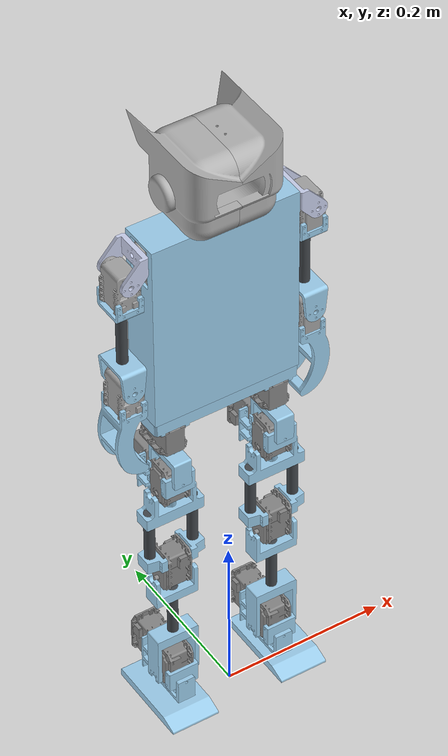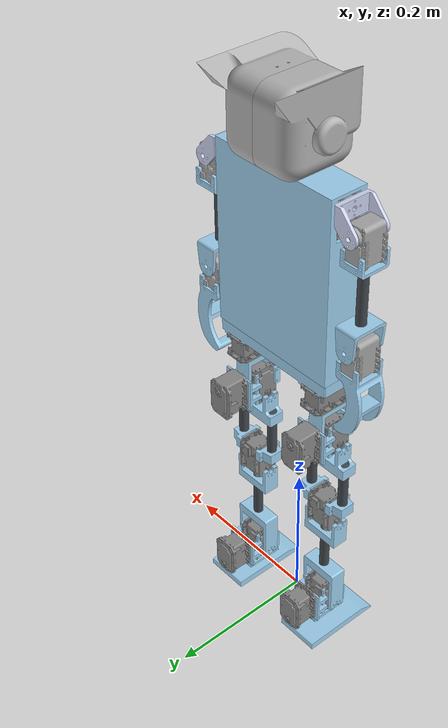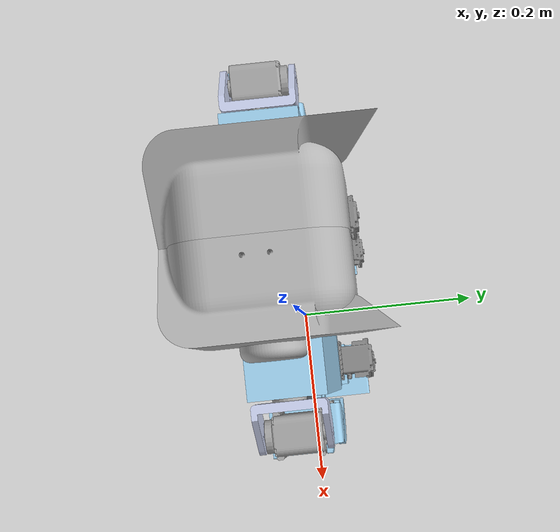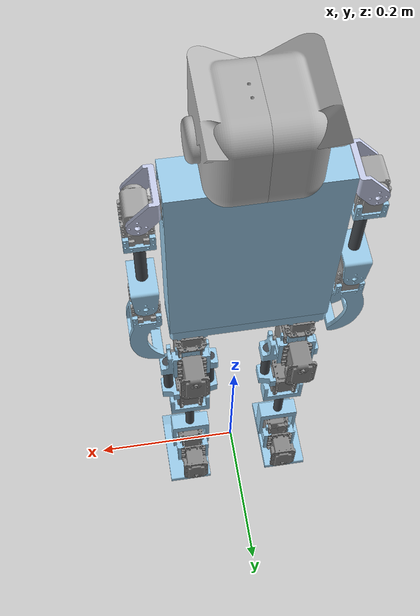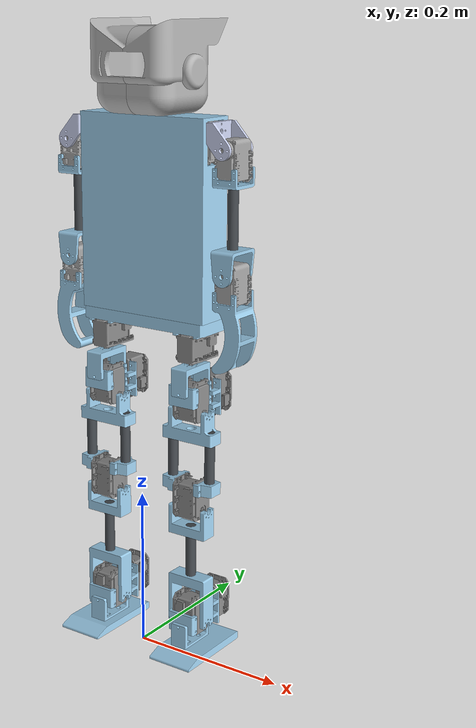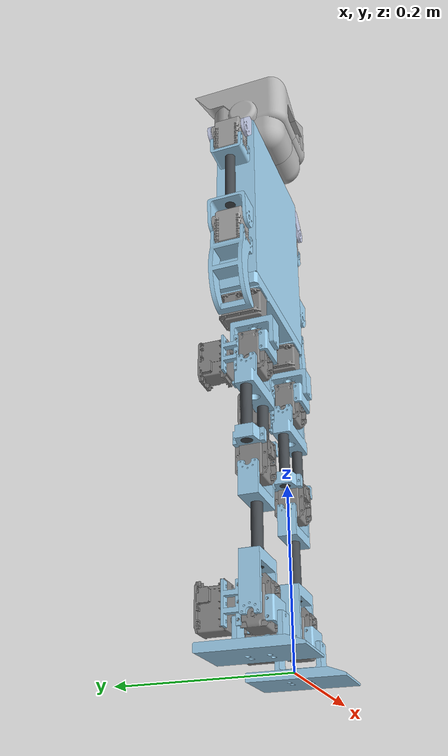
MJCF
<?xml version="1.0" ?>
<!-- Generated using onshape-to-robot -->
<!-- Onshape document_id: f494e174d964f52a4d6ec25c -->
<mujoco model="robot_env">
  <compiler angle="radian" meshdir="assets" autolimits="true"/>
  <default>
    <default class="robot_env">
      <joint frictionloss="0.1" armature="0.005"/>
      <position kp="50" dampratio="1"/>
      <default class="visual">
        <geom type="mesh" contype="0" conaffinity="0" group="2"/>
      </default>
      <default class="collision">
        <geom group="3"/>
      </default>
    </default>
  </default>
  <worldbody>
    <!-- Link body -->
    <body name="body" pos="0 0 .552" quat="1 0 0 0" childclass="robot_env">
      <freejoint name="body_freejoint"/>
      <inertial pos="5.07515e-11 0.024907 -0.0163937" mass="7.19122" fullinertia="0.0520022 0.0720446 0.0228789 3.38177e-10 4.47057e-11 -9.40186e-05"/>
      <!-- Part dc07_00a_dummy_none -->
      <geom type="mesh" class="visual" pos="0.065 0.0125 -0.15275" quat="1.04668e-15 1 1.13187e-25 3.23148e-17" mesh="dc07_00a_dummy_none" material="dc07_00a_dummy_none_material"/>
      <geom type="mesh" class="collision" pos="0.065 0.0125 -0.15275" quat="1.04668e-15 1 1.13187e-25 3.23148e-17" mesh="dc07_00a_dummy_none" material="dc07_00a_dummy_none_material"/>
      <!-- Part shoulder_extension_motor -->
      <geom type="mesh" class="visual" pos="0.071 0.025 0.065976" quat="1 1.23661e-16 -5.55112e-17 1.38778e-16" mesh="shoulder_extension_motor" material="shoulder_extension_motor_material"/>
      <geom type="mesh" class="collision" pos="0.071 0.025 0.065976" quat="1 1.23661e-16 -5.55112e-17 1.38778e-16" mesh="shoulder_extension_motor" material="shoulder_extension_motor_material"/>
      <!-- Part shoulder_extension_motor_2 -->
      <geom type="mesh" class="visual" pos="-0.071 0.025 0.065976" quat="1.55822e-15 6.11073e-17 -3.36536e-16 1" mesh="shoulder_extension_motor" material="shoulder_extension_motor_material"/>
      <geom type="mesh" class="collision" pos="-0.071 0.025 0.065976" quat="1.55822e-15 6.11073e-17 -3.36536e-16 1" mesh="shoulder_extension_motor" material="shoulder_extension_motor_material"/>
      <!-- Part part_1 -->
      <geom type="mesh" class="visual" pos="6.2797e-16 0.025 -0.135" quat="1 0 0 2.95823e-31" mesh="part_1" material="part_1_material"/>
      <geom type="mesh" class="collision" pos="6.2797e-16 0.025 -0.135" quat="1 0 0 2.95823e-31" mesh="part_1" material="part_1_material"/>
      <!-- Part body -->
      <geom type="mesh" class="visual" pos="-0.09 0.05 -0.12" quat="1 0 0 0" mesh="body" material="body_material"/>
      <geom type="mesh" class="collision" pos="-0.09 0.05 -0.12" quat="1 0 0 0" mesh="body" material="body_material"/>
      <!-- Part dc07_00a_dummy_none_2 -->
      <geom type="mesh" class="visual" pos="-0.065 0.0125 -0.15275" quat="1.04668e-15 1 1.15384e-25 3.92537e-17" mesh="dc07_00a_dummy_none" material="dc07_00a_dummy_none_material"/>
      <geom type="mesh" class="collision" pos="-0.065 0.0125 -0.15275" quat="1.04668e-15 1 1.15384e-25 3.92537e-17" mesh="dc07_00a_dummy_none" material="dc07_00a_dummy_none_material"/>
      <!-- Part part_2 -->
      <geom type="mesh" class="visual" pos="4.16334e-17 0.025 0.12" quat="1 -7.82437e-17 -0 5.30825e-16" mesh="part_2" material="part_2_material"/>
      <geom type="mesh" class="collision" pos="4.16334e-17 0.025 0.12" quat="1 -7.82437e-17 -0 5.30825e-16" mesh="part_2" material="part_2_material"/>
      <!-- Part part_1_2 -->
      <geom type="mesh" class="visual" pos="4.16334e-17 0.025 0.12" quat="1 -1.81927e-16 0 5.34295e-16" mesh="part_1__2" material="part_1__2_material"/>
      <geom type="mesh" class="collision" pos="4.16334e-17 0.025 0.12" quat="1 -1.81927e-16 0 5.34295e-16" mesh="part_1__2" material="part_1__2_material"/>
      <!-- Link shoulder_link -->
      <body name="shoulder_link" pos="0.092 0.025 0.104476" quat="0.707107 4.25547e-16 -0.707107 3.33067e-16">
        <!-- Joint from body to shoulder_link -->
        <joint axis="0 0 1" name=" Shoulder front and back right" type="hinge" range="-1.5707963267948966 1.5707963267948966"/>
        <inertial pos="-0.00571829 -1.033e-08 -0.00978897" mass="0.0312537" fullinertia="1.30191e-05 5.64649e-06 1.38435e-05 -5.24922e-12 -1.80302e-06 -5.43041e-12"/>
        <!-- Part shoulder_link -->
        <geom type="mesh" class="visual" pos="-0.011 -0.024127 1.38778e-17" quat="0.5 0.5 0.5 -0.5" mesh="shoulder_link" material="shoulder_link_material"/>
        <geom type="mesh" class="collision" pos="-0.011 -0.024127 1.38778e-17" quat="0.5 0.5 0.5 -0.5" mesh="shoulder_link" material="shoulder_link_material"/>
        <!-- Link shoulder_extension_motor -->
        <body name="shoulder_extension_motor" pos="-0.019 0.020127 -0.022" quat="0.5 -0.5 0.5 0.5">
          <!-- Joint from shoulder_link to shoulder_extension_motor -->
          <joint axis="0 0 1" name="Shoulder right lateral" type="hinge" range="-3.1415926535897922 8.881784197001252e-16"/>
          <inertial pos="-4.37745e-09 0.0335095 -0.0190665" mass="0.47136" fullinertia="0.000788471 7.59222e-05 0.000760928 -1.12984e-10 -1.83295e-11 -1.00061e-05"/>
          <!-- Part arm_to_hand_link -->
          <geom type="mesh" class="visual" pos="-1.38778e-17 0.145 -0.04185" quat="0.707107 0.707107 4.44089e-16 -9.58802e-16" mesh="arm_to_hand_link" material="arm_to_hand_link_material"/>
          <geom type="mesh" class="collision" pos="-1.38778e-17 0.145 -0.04185" quat="0.707107 0.707107 4.44089e-16 -9.58802e-16" mesh="arm_to_hand_link" material="arm_to_hand_link_material"/>
          <!-- Part shoulder_to_arm_link -->
          <geom type="mesh" class="visual" pos="2.77556e-17 0.0325 0.0018" quat="0.5 0.5 0.5 -0.5" mesh="shoulder_to_arm_link" material="shoulder_to_arm_link_material"/>
          <geom type="mesh" class="collision" pos="2.77556e-17 0.0325 0.0018" quat="0.5 0.5 0.5 -0.5" mesh="shoulder_to_arm_link" material="shoulder_to_arm_link_material"/>
          <!-- Part shoulder_extension_motor_3 -->
          <geom type="mesh" class="visual" pos="0 0.0385 -0.0182" quat="0.5 0.5 0.5 -0.5" mesh="shoulder_extension_motor" material="shoulder_extension_motor_material"/>
          <geom type="mesh" class="collision" pos="0 0.0385 -0.0182" quat="0.5 0.5 0.5 -0.5" mesh="shoulder_extension_motor" material="shoulder_extension_motor_material"/>
          <!-- Part peg -->
          <geom type="mesh" class="visual" pos="1.38778e-17 0.12 -0.0182" quat="0.707107 0.707107 6.66134e-16 -6.75059e-16" mesh="peg" material="peg_material"/>
          <geom type="mesh" class="collision" pos="1.38778e-17 0.12 -0.0182" quat="0.707107 0.707107 6.66134e-16 -6.75059e-16" mesh="peg" material="peg_material"/>
          <!-- Link shoulder_extension_motor_2 -->
          <body name="shoulder_extension_motor_2" pos="8.32667e-17 0.145 0.00145" quat="1 -0 5.55112e-16 -2.22045e-16">
            <!-- Joint from shoulder_extension_motor to shoulder_extension_motor_2 -->
            <joint axis="0 0 1" name="right wrist" type="hinge" range="-1.5707963267948957 0.5235987755982997"/>
            <inertial pos="-6.11201e-09 0.012611 -0.0194098" mass="0.33759" fullinertia="9.80176e-05 5.43169e-05 8.19654e-05 -6.98624e-11 -1.84776e-11 -1.47092e-06"/>
            <!-- Part shoulder_extension_motor_4 -->
            <geom type="mesh" class="visual" pos="-1.38778e-17 0.0385 -0.0182" quat="0.5 0.5 0.5 -0.5" mesh="shoulder_extension_motor" material="shoulder_extension_motor_material"/>
            <geom type="mesh" class="collision" pos="-1.38778e-17 0.0385 -0.0182" quat="0.5 0.5 0.5 -0.5" mesh="shoulder_extension_motor" material="shoulder_extension_motor_material"/>
            <!-- Part arm_link -->
            <geom type="mesh" class="visual" pos="-5.05103e-05 0.0325 -0.0382" quat="0.5 0.5 -0.5 0.5" mesh="arm_link" material="arm_link_material"/>
            <geom type="mesh" class="collision" pos="-5.05103e-05 0.0325 -0.0382" quat="0.5 0.5 -0.5 0.5" mesh="arm_link" material="arm_link_material"/>
          </body>
        </body>
      </body>
      <!-- Link shoulder_link_2 -->
      <body name="shoulder_link_2" pos="-0.092 0.025 0.104476" quat="7.00132e-16 -0.707107 -1.11022e-16 -0.707107">
        <!-- Joint from body to shoulder_link_2 -->
        <joint axis="0 0 1" name="Shoulder left front back" type="hinge" range="-1.570796326794893 1.5707963267949"/>
        <inertial pos="-0.00571829 -1.033e-08 -0.00978897" mass="0.0312537" fullinertia="1.30191e-05 5.64649e-06 1.38435e-05 -5.24922e-12 -1.80302e-06 -5.43041e-12"/>
        <!-- Part shoulder_link_2 -->
        <geom type="mesh" class="visual" pos="-0.011 -0.024127 0" quat="0.5 0.5 0.5 -0.5" mesh="shoulder_link" material="shoulder_link_material"/>
        <geom type="mesh" class="collision" pos="-0.011 -0.024127 0" quat="0.5 0.5 0.5 -0.5" mesh="shoulder_link" material="shoulder_link_material"/>
        <!-- Link shoulder_extension_motor_3 -->
        <body name="shoulder_extension_motor_3" pos="-0.019 0.020127 -0.022" quat="0.5 -0.5 0.5 0.5">
          <!-- Joint from shoulder_link_2 to shoulder_extension_motor_3 -->
          <joint axis="0 0 1" name="shoulder left lateral" type="hinge" range="-3.1415926535897922 8.881784197001252e-16"/>
          <inertial pos="-4.37745e-09 0.0335095 -0.0190665" mass="0.47136" fullinertia="0.000788471 7.59222e-05 0.000760928 -1.12984e-10 -1.83295e-11 -1.00061e-05"/>
          <!-- Part arm_to_hand_link_2 -->
          <geom type="mesh" class="visual" pos="1.66533e-16 0.145 -0.04185" quat="0.707107 0.707107 0 8.46076e-17" mesh="arm_to_hand_link" material="arm_to_hand_link_material"/>
          <geom type="mesh" class="collision" pos="1.66533e-16 0.145 -0.04185" quat="0.707107 0.707107 0 8.46076e-17" mesh="arm_to_hand_link" material="arm_to_hand_link_material"/>
          <!-- Part peg_2 -->
          <geom type="mesh" class="visual" pos="1.38778e-16 0.12 -0.0182" quat="0.707107 0.707107 2.22045e-16 1.83844e-16" mesh="peg" material="peg_material"/>
          <geom type="mesh" class="collision" pos="1.38778e-16 0.12 -0.0182" quat="0.707107 0.707107 2.22045e-16 1.83844e-16" mesh="peg" material="peg_material"/>
          <!-- Part shoulder_to_arm_link_2 -->
          <geom type="mesh" class="visual" pos="-2.77556e-17 0.0325 0.0018" quat="0.5 0.5 0.5 -0.5" mesh="shoulder_to_arm_link" material="shoulder_to_arm_link_material"/>
          <geom type="mesh" class="collision" pos="-2.77556e-17 0.0325 0.0018" quat="0.5 0.5 0.5 -0.5" mesh="shoulder_to_arm_link" material="shoulder_to_arm_link_material"/>
          <!-- Part shoulder_extension_motor_5 -->
          <geom type="mesh" class="visual" pos="-1.38778e-17 0.0385 -0.0182" quat="0.5 0.5 0.5 -0.5" mesh="shoulder_extension_motor" material="shoulder_extension_motor_material"/>
          <geom type="mesh" class="collision" pos="-1.38778e-17 0.0385 -0.0182" quat="0.5 0.5 0.5 -0.5" mesh="shoulder_extension_motor" material="shoulder_extension_motor_material"/>
          <!-- Link shoulder_extension_motor_4 -->
          <body name="shoulder_extension_motor_4" pos="9.71445e-17 0.145 0.00145" quat="1 3.01695e-16 -8.32667e-17 1.12757e-16">
            <!-- Joint from shoulder_extension_motor_3 to shoulder_extension_motor_4 -->
            <joint axis="0 0 1" name="left hand" type="hinge" range="-1.5707963267948966 0.5235987755982988"/>
            <inertial pos="-6.11201e-09 0.012611 -0.0194098" mass="0.33759" fullinertia="9.80176e-05 5.43169e-05 8.19654e-05 -6.98624e-11 -1.84776e-11 -1.47092e-06"/>
            <!-- Part arm_link_2 -->
            <geom type="mesh" class="visual" pos="-5.05103e-05 0.0325 -0.0382" quat="0.5 0.5 -0.5 0.5" mesh="arm_link" material="arm_link_material"/>
            <geom type="mesh" class="collision" pos="-5.05103e-05 0.0325 -0.0382" quat="0.5 0.5 -0.5 0.5" mesh="arm_link" material="arm_link_material"/>
            <!-- Part shoulder_extension_motor_6 -->
            <geom type="mesh" class="visual" pos="0 0.0385 -0.0182" quat="0.5 0.5 0.5 -0.5" mesh="shoulder_extension_motor" material="shoulder_extension_motor_material"/>
            <geom type="mesh" class="collision" pos="0 0.0385 -0.0182" quat="0.5 0.5 0.5 -0.5" mesh="shoulder_extension_motor" material="shoulder_extension_motor_material"/>
          </body>
        </body>
      </body>
      <!-- Link part_1 -->
      <body name="part_1" pos="0.065 0.0125 -0.1745" quat="3.25616e-17 -3.221e-17 1.11022e-15 1">
        <!-- Joint from body to part_1 -->
        <joint axis="0 0 1" name="right leg twist" type="hinge" range="-0.5235987755982988 0.5235987755982988"/>
        <inertial pos="0 0 0" mass="1e-09" fullinertia="1e-09 1e-09 1e-09 0 0 0"/>
        <!-- Part part_1_3 -->
        <geom type="mesh" class="visual" pos="-8.85663e-05 -0.0255 -0.03195" quat="0 1 0 0" mesh="part_1__3" material="part_1__3_material"/>
        <geom type="mesh" class="collision" pos="-8.85663e-05 -0.0255 -0.03195" quat="0 1 0 0" mesh="part_1__3" material="part_1__3_material"/>
        <!-- Link part_1_2 -->
        <body name="part_1_2" pos="-8.85663e-05 0.0205 -0.03195" quat="0.707107 -0.707107 0 6.1669e-33">
          <!-- Joint from part_1 to part_1_2 -->
          <joint axis="0 0 1" name="right leg lateral" type="hinge" range="-1.047197551196594 1.0471975511966012"/>
          <inertial pos="-3.38415e-05 0.0123477 -0.0441492" mass="0.707082" fullinertia="0.000559482 0.000502965 0.000187975 1.42758e-06 -2.65164e-07 -9.43743e-06"/>
          <!-- Part part_1_4 -->
          <geom type="mesh" class="visual" pos="-5.39421e-10 -0.0085 -0.00675" quat="0.707107 -0.707107 -2.17342e-09 -2.17342e-09" mesh="part_1__4" material="part_1__4_material"/>
          <geom type="mesh" class="collision" pos="-5.39421e-10 -0.0085 -0.00675" quat="0.707107 -0.707107 -2.17342e-09 -2.17342e-09" mesh="part_1__4" material="part_1__4_material"/>
          <!-- Part dc07_00a_dummy_none_3 -->
          <geom type="mesh" class="visual" pos="-5.00004e-05 0.025 -0.022" quat="0.707107 -2.59329e-17 -0.707107 2.22045e-16" mesh="dc07_00a_dummy_none" material="dc07_00a_dummy_none_material"/>
          <geom type="mesh" class="collision" pos="-5.00004e-05 0.025 -0.022" quat="0.707107 -2.59329e-17 -0.707107 2.22045e-16" mesh="dc07_00a_dummy_none" material="dc07_00a_dummy_none_material"/>
          <!-- Part part_1_5 -->
          <geom type="mesh" class="visual" pos="-0.01505 0.0125 -0.037" quat="0.5 0.5 0.5 -0.5" mesh="part_1__5" material="part_1__5_material"/>
          <geom type="mesh" class="collision" pos="-0.01505 0.0125 -0.037" quat="0.5 0.5 0.5 -0.5" mesh="part_1__5" material="part_1__5_material"/>
          <!-- Part part_1_6 -->
          <geom type="mesh" class="visual" pos="0.01495 0.0125 -0.037" quat="0.5 -0.5 0.5 0.5" mesh="part_1__5" material="part_1__5_material"/>
          <geom type="mesh" class="collision" pos="0.01495 0.0125 -0.037" quat="0.5 -0.5 0.5 0.5" mesh="part_1__5" material="part_1__5_material"/>
          <!-- Part dc07_00a_dummy_none_4 -->
          <geom type="mesh" class="visual" pos="-5.00001e-05 4.71845e-16 -0.06775" quat="1.23915e-16 3.50267e-09 3.33067e-16 -1" mesh="dc07_00a_dummy_none" material="dc07_00a_dummy_none_material"/>
          <geom type="mesh" class="collision" pos="-5.00001e-05 4.71845e-16 -0.06775" quat="1.23915e-16 3.50267e-09 3.33067e-16 -1" mesh="dc07_00a_dummy_none" material="dc07_00a_dummy_none_material"/>
          <!-- Link dc07_00a_dummy_none -->
          <body name="dc07_00a_dummy_none" pos="-0.0178 0.025 -0.022" quat="2.46005e-17 0.707107 1.11022e-16 0.707107">
            <!-- Joint from part_1_2 to dc07_00a_dummy_none -->
            <joint axis="0 0 1" name="right hammy" type="hinge" range="-3.907985046680551e-14 1.5707963267948575"/>
            <inertial pos="8.87415e-05 -0.0909428 0.017692" mass="0.597955" fullinertia="0.000946989 0.000241356 0.00076487 -9.4812e-09 -4.40927e-12 1.1703e-06"/>
            <!-- Part part_1_7 -->
            <geom type="mesh" class="visual" pos="8.85663e-05 -6.66134e-16 0.04442" quat="1.00475e-14 1.43579e-14 0.707107 0.707107" mesh="part_1__6" material="part_1__6_material"/>
            <geom type="mesh" class="collision" pos="8.85663e-05 -6.66134e-16 0.04442" quat="1.00475e-14 1.43579e-14 0.707107 0.707107" mesh="part_1__6" material="part_1__6_material"/>
            <!-- Part peg_3 -->
            <geom type="mesh" class="visual" pos="8.85663e-05 -0.10395 -0.009665" quat="1.0103e-14 1.51239e-14 0.707107 0.707107" mesh="peg" material="peg_material"/>
            <geom type="mesh" class="collision" pos="8.85663e-05 -0.10395 -0.009665" quat="1.0103e-14 1.51239e-14 0.707107 0.707107" mesh="peg" material="peg_material"/>
            <!-- Part peg_4 -->
            <geom type="mesh" class="visual" pos="8.85663e-05 -0.10395 0.045085" quat="9.60343e-15 1.4689e-14 0.707107 0.707107" mesh="peg" material="peg_material"/>
            <geom type="mesh" class="collision" pos="8.85663e-05 -0.10395 0.045085" quat="9.60343e-15 1.4689e-14 0.707107 0.707107" mesh="peg" material="peg_material"/>
            <!-- Part part_1_8 -->
            <geom type="mesh" class="visual" pos="8.85663e-05 -0.08895 0.045085" quat="0.5 -0.5 -0.5 -0.5" mesh="part_1__7" material="part_1__7_material"/>
            <geom type="mesh" class="collision" pos="8.85663e-05 -0.08895 0.045085" quat="0.5 -0.5 -0.5 -0.5" mesh="part_1__7" material="part_1__7_material"/>
            <!-- Part dc07_00a_dummy_none_5 -->
            <geom type="mesh" class="visual" pos="8.85663e-05 -0.12695 0.01771" quat="1.78468e-14 3.68255e-15 5.55112e-16 1" mesh="dc07_00a_dummy_none" material="dc07_00a_dummy_none_material"/>
            <geom type="mesh" class="collision" pos="8.85663e-05 -0.12695 0.01771" quat="1.78468e-14 3.68255e-15 5.55112e-16 1" mesh="dc07_00a_dummy_none" material="dc07_00a_dummy_none_material"/>
            <!-- Part part_1_9 -->
            <geom type="mesh" class="visual" pos="8.85663e-05 -0.08895 -0.009665" quat="0.5 -0.5 0.5 0.5" mesh="part_1__7" material="part_1__7_material"/>
            <geom type="mesh" class="collision" pos="8.85663e-05 -0.08895 -0.009665" quat="0.5 -0.5 0.5 0.5" mesh="part_1__7" material="part_1__7_material"/>
            <!-- Link part_1_3 -->
            <body name="part_1_3" pos="8.85663e-05 -0.12695 0.03546" quat="3.67935e-15 -1.78413e-14 -1 5.82867e-16">
              <!-- Joint from dc07_00a_dummy_none to part_1_3 -->
              <joint axis="0 0 1" name="right knee" type="hinge" range="-1.570796326794932 1.570796326794861"/>
              <inertial pos="-8.85412e-05 -0.0702967 0.01771" mass="0.195615" fullinertia="0.000327822 5.05789e-05 0.000288749 1.56531e-08 2.25082e-19 2.46587e-19"/>
              <!-- Part peg_5 -->
              <geom type="mesh" class="visual" pos="-8.85663e-05 -0.10395 0.01771" quat="0.707107 -0.707107 1.22125e-14 -1.29728e-14" mesh="peg" material="peg_material"/>
              <geom type="mesh" class="collision" pos="-8.85663e-05 -0.10395 0.01771" quat="0.707107 -0.707107 1.22125e-14 -1.29728e-14" mesh="peg" material="peg_material"/>
              <!-- Part part_1_10 -->
              <geom type="mesh" class="visual" pos="-8.85663e-05 0 -0.009" quat="0.707107 -0.707107 1.22125e-14 -1.3017e-14" mesh="part_1__8" material="part_1__8_material"/>
              <geom type="mesh" class="collision" pos="-8.85663e-05 0 -0.009" quat="0.707107 -0.707107 1.22125e-14 -1.3017e-14" mesh="part_1__8" material="part_1__8_material"/>
              <!-- Part part_1_11 -->
              <geom type="mesh" class="visual" pos="-8.85663e-05 -0.15385 -0.009" quat="1.20112e-14 -1.31232e-14 -0.707107 0.707107" mesh="part_1__9" material="part_1__9_material"/>
              <geom type="mesh" class="collision" pos="-8.85663e-05 -0.15385 -0.009" quat="1.20112e-14 -1.31232e-14 -0.707107 0.707107" mesh="part_1__9" material="part_1__9_material"/>
              <!-- Link part_1_4 -->
              <body name="part_1_4" pos="-0.000177133 -0.15385 0.03942" quat="1.77636e-14 -7.84833e-16 5.55112e-16 1">
                <!-- Joint from part_1_3 to part_1_4 -->
                <joint axis="0 0 1" name="right foot" type="hinge" range="-1.570796326794853 0.5235987755983423"/>
                <inertial pos="-0.0221492 -0.0114021 -0.0217662" mass="0.707082" fullinertia="0.000187139 0.000502965 0.000558646 -5.372e-06 2.65156e-07 -1.4311e-06"/>
                <!-- Part part_1_12 -->
                <geom type="mesh" class="visual" pos="-0.015 -0.0125 -0.03675" quat="1.52473e-14 1.51403e-14 0.707107 0.707107" mesh="part_1__5" material="part_1__5_material"/>
                <geom type="mesh" class="collision" pos="-0.015 -0.0125 -0.03675" quat="1.52473e-14 1.51403e-14 0.707107 0.707107" mesh="part_1__5" material="part_1__5_material"/>
                <!-- Part dc07_00a_dummy_none_6 -->
                <geom type="mesh" class="visual" pos="-0.04575 1.77636e-15 -0.02175" quat="0.707107 -1.02913e-14 0.707107 -4.0485e-14" mesh="dc07_00a_dummy_none" material="dc07_00a_dummy_none_material"/>
                <geom type="mesh" class="collision" pos="-0.04575 1.77636e-15 -0.02175" quat="0.707107 -1.02913e-14 0.707107 -4.0485e-14" mesh="dc07_00a_dummy_none" material="dc07_00a_dummy_none_material"/>
                <!-- Part dc07_00a_dummy_none_7 -->
                <geom type="mesh" class="visual" pos="6.11663e-15 -3.33067e-16 -0.02175" quat="1 -3.57897e-14 3.33067e-16 -2.16119e-14" mesh="dc07_00a_dummy_none" material="dc07_00a_dummy_none_material"/>
                <geom type="mesh" class="collision" pos="6.11663e-15 -3.33067e-16 -0.02175" quat="1 -3.57897e-14 3.33067e-16 -2.16119e-14" mesh="dc07_00a_dummy_none" material="dc07_00a_dummy_none_material"/>
                <!-- Part part_1_13 -->
                <geom type="mesh" class="visual" pos="0.01525 0.0085 -0.0218" quat="0.5 0.5 -0.5 0.5" mesh="part_1__4" material="part_1__4_material"/>
                <geom type="mesh" class="collision" pos="0.01525 0.0085 -0.0218" quat="0.5 0.5 -0.5 0.5" mesh="part_1__4" material="part_1__4_material"/>
                <!-- Part part_1_14 -->
                <geom type="mesh" class="visual" pos="-0.015 -0.0125 -0.00675" quat="1.5299e-14 -1.53038e-14 -0.707107 0.707107" mesh="part_1__5" material="part_1__5_material"/>
                <geom type="mesh" class="collision" pos="-0.015 -0.0125 -0.00675" quat="1.5299e-14 -1.53038e-14 -0.707107 0.707107" mesh="part_1__5" material="part_1__5_material"/>
                <!-- Link part_1_5 -->
                <body name="part_1_5" pos="0.022 1.86517e-14 -0.0218" quat="0.707107 -1.19644e-14 -0.707107 -1.1352e-14">
                  <!-- Joint from part_1_4 to part_1_5 -->
                  <joint axis="0 0 1" name="right foot twist" type="hinge" range="-0.523598775598226 0.5235987755983716"/>
                  <inertial pos="-1.32219e-06 0.0214439 0.0199037" mass="0.0378211" fullinertia="1.63936e-05 1.44949e-05 5.01369e-06 -1.03364e-09 1.17998e-09 -4.80658e-07"/>
                  <!-- Part part_1_15 -->
                  <geom type="mesh" class="visual" pos="0.007 0.03695 0.0205" quat="0.707107 0.707107 2.77556e-15 -3.20888e-15" mesh="part_1__10" material="part_1__10_material"/>
                  <geom type="mesh" class="collision" pos="0.007 0.03695 0.0205" quat="0.707107 0.707107 2.77556e-15 -3.20888e-15" mesh="part_1__10" material="part_1__10_material"/>
                  <!-- Part part_1_16 -->
                  <geom type="mesh" class="visual" pos="0 0 0.046" quat="0.707107 0.707107 -0 -2.51823e-25" mesh="part_1__11" material="part_1__11_material"/>
                  <geom type="mesh" class="collision" pos="0 0 0.046" quat="0.707107 0.707107 -0 -2.51823e-25" mesh="part_1__11" material="part_1__11_material"/>
                </body>
              </body>
            </body>
          </body>
        </body>
      </body>
      <!-- Link part_1_6 -->
      <body name="part_1_6" pos="-0.065 0.0125 -0.1745" quat="8.07806e-17 8.62114e-16 -6.66134e-16 -1">
        <!-- Joint from body to part_1_6 -->
        <joint axis="0 0 1" name="left leg twist" type="hinge" range="-0.523598775598297 0.5235987755983006"/>
        <inertial pos="0 0 0" mass="1e-09" fullinertia="1e-09 1e-09 1e-09 0 0 0"/>
        <!-- Part part_1_17 -->
        <geom type="mesh" class="visual" pos="-8.85663e-05 -0.0255 -0.03195" quat="0 1 0 0" mesh="part_1__3" material="part_1__3_material"/>
        <geom type="mesh" class="collision" pos="-8.85663e-05 -0.0255 -0.03195" quat="0 1 0 0" mesh="part_1__3" material="part_1__3_material"/>
        <!-- Link part_1_7 -->
        <body name="part_1_7" pos="-8.85663e-05 0.0205 -0.03195" quat="0.707107 -0.707107 0 -4.79509e-34">
          <!-- Joint from part_1_6 to part_1_7 -->
          <joint axis="0 0 1" name="left leg lateral" type="hinge" range="-1.0471975511965959 1.0471975511965994"/>
          <inertial pos="-3.38415e-05 0.0123477 -0.0441492" mass="0.707082" fullinertia="0.000559482 0.000502965 0.000187975 1.42758e-06 -2.65164e-07 -9.43743e-06"/>
          <!-- Part part_1_18 -->
          <geom type="mesh" class="visual" pos="0.01495 0.0125 -0.037" quat="0.5 -0.5 0.5 0.5" mesh="part_1__5" material="part_1__5_material"/>
          <geom type="mesh" class="collision" pos="0.01495 0.0125 -0.037" quat="0.5 -0.5 0.5 0.5" mesh="part_1__5" material="part_1__5_material"/>
          <!-- Part dc07_00a_dummy_none_8 -->
          <geom type="mesh" class="visual" pos="-5.00001e-05 -5.55112e-17 -0.06775" quat="9.05687e-16 3.50267e-09 0 -1" mesh="dc07_00a_dummy_none" material="dc07_00a_dummy_none_material"/>
          <geom type="mesh" class="collision" pos="-5.00001e-05 -5.55112e-17 -0.06775" quat="9.05687e-16 3.50267e-09 0 -1" mesh="dc07_00a_dummy_none" material="dc07_00a_dummy_none_material"/>
          <!-- Part dc07_00a_dummy_none_9 -->
          <geom type="mesh" class="visual" pos="-5.00004e-05 0.025 -0.022" quat="0.707107 7.38434e-16 -0.707107 5.56892e-16" mesh="dc07_00a_dummy_none" material="dc07_00a_dummy_none_material"/>
          <geom type="mesh" class="collision" pos="-5.00004e-05 0.025 -0.022" quat="0.707107 7.38434e-16 -0.707107 5.56892e-16" mesh="dc07_00a_dummy_none" material="dc07_00a_dummy_none_material"/>
          <!-- Part part_1_19 -->
          <geom type="mesh" class="visual" pos="-0.01505 0.0125 -0.037" quat="0.5 0.5 0.5 -0.5" mesh="part_1__5" material="part_1__5_material"/>
          <geom type="mesh" class="collision" pos="-0.01505 0.0125 -0.037" quat="0.5 0.5 0.5 -0.5" mesh="part_1__5" material="part_1__5_material"/>
          <!-- Part part_1_20 -->
          <geom type="mesh" class="visual" pos="-5.39421e-10 -0.0085 -0.00675" quat="0.707107 -0.707107 -2.17342e-09 -2.17342e-09" mesh="part_1__4" material="part_1__4_material"/>
          <geom type="mesh" class="collision" pos="-5.39421e-10 -0.0085 -0.00675" quat="0.707107 -0.707107 -2.17342e-09 -2.17342e-09" mesh="part_1__4" material="part_1__4_material"/>
          <!-- Link dc07_00a_dummy_none_2 -->
          <body name="dc07_00a_dummy_none_2" pos="-0.0178 0.025 -0.022" quat="7.38434e-16 -0.707107 -6.66134e-16 -0.707107">
            <!-- Joint from part_1_7 to dc07_00a_dummy_none_2 -->
            <joint axis="0 0 1" name="left hammy" type="hinge" range="-8.881784197001252e-16 1.5707963267948957"/>
            <inertial pos="8.87415e-05 -0.0909428 0.017692" mass="0.597955" fullinertia="0.000946989 0.000241356 0.00076487 -9.4812e-09 -4.40926e-12 1.1703e-06"/>
            <!-- Part part_1_21 -->
            <geom type="mesh" class="visual" pos="8.85663e-05 2.77556e-17 0.04442" quat="3.33067e-16 -4.70426e-17 -0.707107 -0.707107" mesh="part_1__6" material="part_1__6_material"/>
            <geom type="mesh" class="collision" pos="8.85663e-05 2.77556e-17 0.04442" quat="3.33067e-16 -4.70426e-17 -0.707107 -0.707107" mesh="part_1__6" material="part_1__6_material"/>
            <!-- Part part_1_22 -->
            <geom type="mesh" class="visual" pos="8.85663e-05 -0.08895 0.045085" quat="0.5 -0.5 -0.5 -0.5" mesh="part_1__7" material="part_1__7_material"/>
            <geom type="mesh" class="collision" pos="8.85663e-05 -0.08895 0.045085" quat="0.5 -0.5 -0.5 -0.5" mesh="part_1__7" material="part_1__7_material"/>
            <!-- Part peg_6 -->
            <geom type="mesh" class="visual" pos="8.85663e-05 -0.10395 0.045085" quat="2.22045e-16 -1.39694e-16 -0.707107 -0.707107" mesh="peg" material="peg_material"/>
            <geom type="mesh" class="collision" pos="8.85663e-05 -0.10395 0.045085" quat="2.22045e-16 -1.39694e-16 -0.707107 -0.707107" mesh="peg" material="peg_material"/>
            <!-- Part dc07_00a_dummy_none_10 -->
            <geom type="mesh" class="visual" pos="8.85663e-05 -0.12695 0.01771" quat="0 2.4694e-16 0 1" mesh="dc07_00a_dummy_none" material="dc07_00a_dummy_none_material"/>
            <geom type="mesh" class="collision" pos="8.85663e-05 -0.12695 0.01771" quat="0 2.4694e-16 0 1" mesh="dc07_00a_dummy_none" material="dc07_00a_dummy_none_material"/>
            <!-- Part peg_7 -->
            <geom type="mesh" class="visual" pos="8.85663e-05 -0.10395 -0.009665" quat="2.10942e-15 -4.9323e-15 0.707107 0.707107" mesh="peg" material="peg_material"/>
            <geom type="mesh" class="collision" pos="8.85663e-05 -0.10395 -0.009665" quat="2.10942e-15 -4.9323e-15 0.707107 0.707107" mesh="peg" material="peg_material"/>
            <!-- Part part_1_23 -->
            <geom type="mesh" class="visual" pos="8.85663e-05 -0.08895 -0.009665" quat="0.5 -0.5 0.5 0.5" mesh="part_1__7" material="part_1__7_material"/>
            <geom type="mesh" class="collision" pos="8.85663e-05 -0.08895 -0.009665" quat="0.5 -0.5 0.5 0.5" mesh="part_1__7" material="part_1__7_material"/>
            <!-- Link peg -->
            <body name="peg" pos="8.85663e-05 -0.12695 0.03546" quat="2.77556e-16 2.58585e-17 -1 -5.55112e-16">
              <!-- Joint from dc07_00a_dummy_none_2 to peg -->
              <joint axis="0 0 1" name="left knee" type="hinge" range="-1.5707963267948974 1.5707963267948957"/>
              <inertial pos="-8.85412e-05 -0.0702967 0.01771" mass="0.195615" fullinertia="0.000327822 5.05789e-05 0.000288749 1.56531e-08 8.54871e-20 -1.27997e-20"/>
              <!-- Part part_1_24 -->
              <geom type="mesh" class="visual" pos="-8.85663e-05 -0.15385 -0.009" quat="5.55112e-17 -9.25444e-17 -0.707107 0.707107" mesh="part_1__9" material="part_1__9_material"/>
              <geom type="mesh" class="collision" pos="-8.85663e-05 -0.15385 -0.009" quat="5.55112e-17 -9.25444e-17 -0.707107 0.707107" mesh="part_1__9" material="part_1__9_material"/>
              <!-- Part peg_8 -->
              <geom type="mesh" class="visual" pos="-8.85663e-05 -0.10395 0.01771" quat="0.707107 -0.707107 -1.11022e-16 -7.29459e-17" mesh="peg" material="peg_material"/>
              <geom type="mesh" class="collision" pos="-8.85663e-05 -0.10395 0.01771" quat="0.707107 -0.707107 -1.11022e-16 -7.29459e-17" mesh="peg" material="peg_material"/>
              <!-- Part part_1_25 -->
              <geom type="mesh" class="visual" pos="-8.85663e-05 0 -0.009" quat="0.707107 -0.707107 -1.11022e-16 -8.98677e-17" mesh="part_1__8" material="part_1__8_material"/>
              <geom type="mesh" class="collision" pos="-8.85663e-05 0 -0.009" quat="0.707107 -0.707107 -1.11022e-16 -8.98677e-17" mesh="part_1__8" material="part_1__8_material"/>
              <!-- Link part_1_8 -->
              <body name="part_1_8" pos="-0.000177133 -0.15385 0.03942" quat="8.32667e-17 1.33128e-16 2.22045e-16 -1">
                <!-- Joint from peg to part_1_8 -->
                <joint axis="0 0 1" name="left foot lift" type="hinge" range="-1.570796326794893 0.5235987755983024"/>
                <inertial pos="-0.0221492 -0.0114021 -0.0217662" mass="0.707082" fullinertia="0.000187139 0.000502965 0.000558646 -5.372e-06 2.65156e-07 -1.4311e-06"/>
                <!-- Part part_1_26 -->
                <geom type="mesh" class="visual" pos="-0.015 -0.0125 -0.00675" quat="9.99201e-16 8.54565e-16 0.707107 -0.707107" mesh="part_1__5" material="part_1__5_material"/>
                <geom type="mesh" class="collision" pos="-0.015 -0.0125 -0.00675" quat="9.99201e-16 8.54565e-16 0.707107 -0.707107" mesh="part_1__5" material="part_1__5_material"/>
                <!-- Part part_1_27 -->
                <geom type="mesh" class="visual" pos="0.01525 0.0085 -0.0218" quat="0.5 0.5 -0.5 0.5" mesh="part_1__4" material="part_1__4_material"/>
                <geom type="mesh" class="collision" pos="0.01525 0.0085 -0.0218" quat="0.5 0.5 -0.5 0.5" mesh="part_1__4" material="part_1__4_material"/>
                <!-- Part dc07_00a_dummy_none_11 -->
                <geom type="mesh" class="visual" pos="-0.04575 7.77156e-16 -0.02175" quat="0.707107 1.19743e-16 0.707107 1.11022e-16" mesh="dc07_00a_dummy_none" material="dc07_00a_dummy_none_material"/>
                <geom type="mesh" class="collision" pos="-0.04575 7.77156e-16 -0.02175" quat="0.707107 1.19743e-16 0.707107 1.11022e-16" mesh="dc07_00a_dummy_none" material="dc07_00a_dummy_none_material"/>
                <!-- Part part_1_28 -->
                <geom type="mesh" class="visual" pos="-0.015 -0.0125 -0.03675" quat="9.78384e-16 -9.6236e-16 0.707107 0.707107" mesh="part_1__5" material="part_1__5_material"/>
                <geom type="mesh" class="collision" pos="-0.015 -0.0125 -0.03675" quat="9.78384e-16 -9.6236e-16 0.707107 0.707107" mesh="part_1__5" material="part_1__5_material"/>
                <!-- Part dc07_00a_dummy_none_12 -->
                <geom type="mesh" class="visual" pos="-2.65413e-16 6.66134e-16 -0.02175" quat="1 -2.07323e-16 -6.66134e-16 4.71845e-16" mesh="dc07_00a_dummy_none" material="dc07_00a_dummy_none_material"/>
                <geom type="mesh" class="collision" pos="-2.65413e-16 6.66134e-16 -0.02175" quat="1 -2.07323e-16 -6.66134e-16 4.71845e-16" mesh="dc07_00a_dummy_none" material="dc07_00a_dummy_none_material"/>
                <!-- Link part_1_9 -->
                <body name="part_1_9" pos="0.022 2.04281e-14 -0.0218" quat="0.707107 -2.29352e-16 -0.707107 -4.996e-16">
                  <!-- Joint from part_1_8 to part_1_9 -->
                  <joint axis="0 0 1" name="left foot twist" type="hinge" range="-0.3490658503988659 0.3490658503988659"/>
                  <inertial pos="-0.00622102 0.0301908 0.0231366" mass="0.187872" fullinertia="0.000168904 0.000212446 6.00962e-05 2.25721e-06 5.44871e-07 -2.23578e-07"/>
                  <!-- Part part_1_29 -->
                  <geom type="mesh" class="visual" pos="-0.007 0.03695 0.0205" quat="0.707107 0.707107 1.11022e-16 1.48502e-17" mesh="part_1__12" material="part_1__12_material"/>
                  <geom type="mesh" class="collision" pos="-0.007 0.03695 0.0205" quat="0.707107 0.707107 1.11022e-16 1.48502e-17" mesh="part_1__12" material="part_1__12_material"/>
                  <!-- Part part_1_30 -->
                  <geom type="mesh" class="visual" pos="0 0 0.046" quat="0.707107 0.707107 0 -4.45095e-25" mesh="part_1__11" material="part_1__11_material"/>
                  <geom type="mesh" class="collision" pos="0 0 0.046" quat="0.707107 0.707107 0 -4.45095e-25" mesh="part_1__11" material="part_1__11_material"/>
                </body>
              </body>
            </body>
          </body>
        </body>
      </body>
    </body>
  </worldbody>
  <asset>
    <mesh file="part_1__10.stl"/>
    <mesh file="part_1__7.stl"/>
    <mesh file="part_1__12.stl"/>
    <mesh file="part_1__4.stl"/>
    <mesh file="arm_to_hand_link.stl"/>
    <mesh file="part_1__9.stl"/>
    <mesh file="shoulder_link.stl"/>
    <mesh file="body.stl"/>
    <mesh file="part_2.stl"/>
    <mesh file="peg.stl"/>
    <mesh file="part_1__3.stl"/>
    <mesh file="arm_link.stl"/>
    <mesh file="dc07_00a_dummy_none.stl"/>
    <mesh file="shoulder_to_arm_link.stl"/>
    <mesh file="part_1__11.stl"/>
    <mesh file="part_1__5.stl"/>
    <mesh file="part_1__8.stl"/>
    <mesh file="part_1__6.stl"/>
    <mesh file="shoulder_extension_motor.stl"/>
    <mesh file="part_1.stl"/>
    <mesh file="part_1__2.stl"/>
    <material name="dc07_00a_dummy_none_material" rgba="0.533333 0.533333 0.533333 1"/>
    <material name="shoulder_extension_motor_material" rgba="0.647059 0.647059 0.647059 1"/>
    <material name="part_1_material" rgba="0.615686 0.811765 0.929412 1"/>
    <material name="body_material" rgba="0.615686 0.811765 0.929412 1"/>
    <material name="part_2_material" rgba="0.701961 0.701961 0.701961 1"/>
    <material name="part_1__2_material" rgba="0.701961 0.701961 0.701961 1"/>
    <material name="shoulder_link_material" rgba="0.796078 0.823529 0.937255 1"/>
    <material name="arm_to_hand_link_material" rgba="0.615686 0.811765 0.929412 1"/>
    <material name="shoulder_to_arm_link_material" rgba="0.615686 0.811765 0.929412 1"/>
    <material name="peg_material" rgba="0.262745 0.282353 0.301961 1"/>
    <material name="arm_link_material" rgba="0.615686 0.811765 0.929412 1"/>
    <material name="part_1__3_material" rgba="0.615686 0.811765 0.929412 1"/>
    <material name="part_1__4_material" rgba="0.615686 0.811765 0.929412 1"/>
    <material name="part_1__5_material" rgba="0.615686 0.811765 0.929412 1"/>
    <material name="part_1__6_material" rgba="0.615686 0.811765 0.929412 1"/>
    <material name="part_1__7_material" rgba="0.615686 0.811765 0.929412 1"/>
    <material name="part_1__8_material" rgba="0.615686 0.811765 0.929412 1"/>
    <material name="part_1__9_material" rgba="0.615686 0.811765 0.929412 1"/>
    <material name="part_1__10_material" rgba="0.615686 0.811765 0.929412 1"/>
    <material name="part_1__11_material" rgba="0.615686 0.811765 0.929412 1"/>
    <material name="part_1__12_material" rgba="0.615686 0.811765 0.929412 1"/>
  </asset>
  <actuator>
    <position class="robot_env" name=" Shoulder front and back right" joint=" Shoulder front and back right" inheritrange="1"/>
    <position class="robot_env" name="Shoulder right lateral" joint="Shoulder right lateral" inheritrange="1"/>
    <position class="robot_env" name="right wrist" joint="right wrist" inheritrange="1"/>
    <position class="robot_env" name="Shoulder left front back" joint="Shoulder left front back" inheritrange="1"/>
    <position class="robot_env" name="shoulder left lateral" joint="shoulder left lateral" inheritrange="1"/>
    <position class="robot_env" name="left hand" joint="left hand" inheritrange="1"/>
    <position class="robot_env" name="right leg twist" joint="right leg twist" inheritrange="1"/>
    <position class="robot_env" name="right leg lateral" joint="right leg lateral" inheritrange="1"/>
    <position class="robot_env" name="right hammy" joint="right hammy" inheritrange="1"/>
    <position class="robot_env" name="right knee" joint="right knee" inheritrange="1"/>
    <position class="robot_env" name="right foot" joint="right foot" inheritrange="1"/>
    <position class="robot_env" name="right foot twist" joint="right foot twist" inheritrange="1"/>
    <position class="robot_env" name="left leg twist" joint="left leg twist" inheritrange="1"/>
    <position class="robot_env" name="left leg lateral" joint="left leg lateral" inheritrange="1"/>
    <position class="robot_env" name="left hammy" joint="left hammy" inheritrange="1"/>
    <position class="robot_env" name="left knee" joint="left knee" inheritrange="1"/>
    <position class="robot_env" name="left foot lift" joint="left foot lift" inheritrange="1"/>
    <position class="robot_env" name="left foot twist" joint="left foot twist" inheritrange="1"/>
  </actuator>
  <equality/>
</mujoco>
